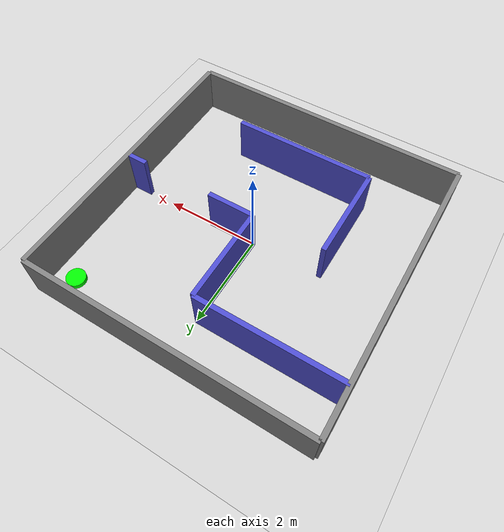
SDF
<?xml version="1.0" ?>
<sdf version="1.6">
  <world name="maze_world">

    <!-- Light -->
    <include>
      <uri>model://sun</uri>
    </include>

    <!-- Ground -->
    <include>
      <uri>model://ground_plane</uri>
    </include>

    <!-- ========== MAZE WALLS ========== -->
    <!-- Outer boundary walls -->

    <!-- South wall -->
    <model name="wall_south">
      <static>true</static>
      <pose>0 -3 0.5 0 0 0</pose>
      <link name="link">
        <collision name="col"><geometry><box><size>6 0.1 1</size></box></geometry></collision>
        <visual name="vis"><geometry><box><size>6 0.1 1</size></box></geometry>
          <material><ambient>0.5 0.5 0.5 1</ambient></material></visual>
      </link>
    </model>

    <!-- North wall -->
    <model name="wall_north">
      <static>true</static>
      <pose>0 3 0.5 0 0 0</pose>
      <link name="link">
        <collision name="col"><geometry><box><size>6 0.1 1</size></box></geometry></collision>
        <visual name="vis"><geometry><box><size>6 0.1 1</size></box></geometry>
          <material><ambient>0.5 0.5 0.5 1</ambient></material></visual>
      </link>
    </model>

    <!-- West wall -->
    <model name="wall_west">
      <static>true</static>
      <pose>-3 0 0.5 0 0 0</pose>
      <link name="link">
        <collision name="col"><geometry><box><size>0.1 6 1</size></box></geometry></collision>
        <visual name="vis"><geometry><box><size>0.1 6 1</size></box></geometry>
          <material><ambient>0.5 0.5 0.5 1</ambient></material></visual>
      </link>
    </model>

    <!-- East wall -->
    <model name="wall_east">
      <static>true</static>
      <pose>3 0 0.5 0 0 0</pose>
      <link name="link">
        <collision name="col"><geometry><box><size>0.1 6 1</size></box></geometry></collision>
        <visual name="vis"><geometry><box><size>0.1 6 1</size></box></geometry>
          <material><ambient>0.5 0.5 0.5 1</ambient></material></visual>
      </link>
    </model>

    <!-- Internal maze walls -->
    <model name="wall_i1">
      <static>true</static>
      <pose>-1.5 2 0.5 0 0 0</pose>
      <link name="link">
        <collision name="col"><geometry><box><size>3 0.1 1</size></box></geometry></collision>
        <visual name="vis"><geometry><box><size>3 0.1 1</size></box></geometry>
          <material><ambient>0.3 0.3 0.8 1</ambient></material></visual>
      </link>
    </model>

    <model name="wall_i2">
      <static>true</static>
      <pose>0 1 0.5 0 0 0</pose>
      <link name="link">
        <collision name="col"><geometry><box><size>0.1 2 1</size></box></geometry></collision>
        <visual name="vis"><geometry><box><size>0.1 2 1</size></box></geometry>
          <material><ambient>0.3 0.3 0.8 1</ambient></material></visual>
      </link>
    </model>

    <!-- wall_i3 split into two with a gap for the robot to pass through -->
    <model name="wall_i3a">
      <static>true</static>
      <pose>0.5 0 0.5 0 0 0</pose>
      <link name="link">
        <collision name="col"><geometry><box><size>1.0 0.1 1</size></box></geometry></collision>
        <visual name="vis"><geometry><box><size>1.0 0.1 1</size></box></geometry>
          <material><ambient>0.3 0.3 0.8 1</ambient></material></visual>
      </link>
    </model>

     <model name="wall_i3b">
      <static>true</static>
      <pose>2.8 0 0.5 0 0 0</pose>
      <link name="link">
        <collision name="col"><geometry><box><size>0.3 0.1 1</size></box></geometry></collision>
        <visual name="vis"><geometry><box><size>0.5 0.1 1</size></box></geometry>
          <material><ambient>0.3 0.3 0.8 1</ambient></material></visual>
      </link>
    </model>

    <model name="wall_i4">
      <static>true</static>
      <pose>-1.5 -1 0.5 0 0 0</pose>
      <link name="link">
        <collision name="col"><geometry><box><size>0.1 2 1</size></box></geometry></collision>
        <visual name="vis"><geometry><box><size>0.1 2 1</size></box></geometry>
          <material><ambient>0.3 0.3 0.8 1</ambient></material></visual>
      </link>
    </model>

    <model name="wall_i5">
      <static>true</static>
      <pose>0 -2 0.5 0 0 0</pose>
      <link name="link">
        <collision name="col"><geometry><box><size>3 0.1 1</size></box></geometry></collision>
        <visual name="vis"><geometry><box><size>3 0.1 1</size></box></geometry>
          <material><ambient>0.3 0.3 0.8 1</ambient></material></visual>
      </link>
    </model>

 <!-- GOAL MARKER - green cylinder at exit point -->
    <model name="goal_marker">
      <static>true</static>
      <pose>2.5 2.5 0.05 0 0 0</pose>
      <link name="link">
        <collision name="col">
          <geometry><cylinder><radius>0.2</radius><length>0.1</length></cylinder></geometry>
        </collision>
        <visual name="vis">
          <geometry><cylinder><radius>0.2</radius><length>0.1</length></cylinder></geometry>
          <material>
            <ambient>0 1 0 1</ambient>
            <diffuse>0 1 0 1</diffuse>
          </material>
        </visual>
      </link>
    </model>
 </world>
</sdf>
